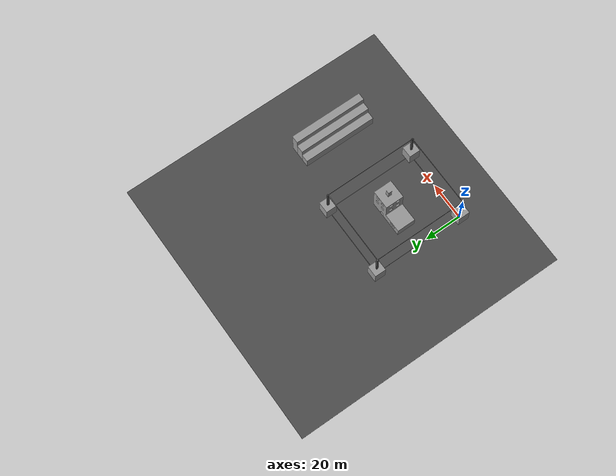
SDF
<?xml version="1.0" ?>
<sdf version="1.5">
  <world name="default">

    <gui fullscreen='0'>
      <camera name='user_camera'>
        <pose>-61.3 -26.2 72 0 0.53 0.62</pose>
      </camera>
    </gui>

    <scene>
      <grid>false</grid>
      <origin_visual>false</origin_visual>
    </scene>

    <!-- A global light source -->
    <include>
      <uri>model://sun</uri>
    </include>
    <!-- A ground plane -->
    <include>
      <uri>model://mbzirc_plane</uri>
      <name>mbzirc_plane</name>
	  <pose> 30.0 50.0 0.1 0 0 0 </pose>
    </include>

    <include>
      <uri>model://mbzirc_stand_6</uri>
      <name>mbzirc_stand_6_2</name>
	  <pose> 67.0 25.0 0.1 0 0 0</pose>
    </include>
    <include>
      <uri>model://mbzirc_stand_10</uri>
      <name>mbzirc_stand_10_2</name>
	  <pose> 71.0 25.0 0.1 0 0 0</pose>
    </include>
    <include>
      <uri>model://mbzirc_stand_14</uri>
      <name>mbzirc_stand_14_2</name>
	  <pose> 75.0 25.0 0.1 0 0 0</pose>
    </include>

    <include>
      <uri>model://mbzirc_roof_50</uri>
      <name>mbzirc_roof_1</name>
	  <pose> 0.0 25.0 20 1.57079 0 0</pose>
    </include>

    <include>
      <uri>model://mbzirc_roof_50</uri>
      <name>mbzirc_roof_2</name>
	  <pose> 40.0 25.0 20 1.57079 0 0</pose>
    </include>

    <include>
      <uri>model://mbzirc_roof_40</uri>
      <name>mbzirc_roof_3</name>
	  <pose> 20.0 50.0 20 0 1.57079 0 </pose>
    </include>

    <include>
      <uri>model://mbzirc_roof_40</uri>
      <name>mbzirc_roof_4</name>
	  <pose> 20.0 0.0 20 0 1.57079 0 </pose>
    </include>

    <include>
      <uri>model://mbzirc_roof_50</uri>
      <name>mbzirc_roof_5</name>
	  <pose> 0.0 25.0 0.1 1.57079 0 0</pose>
    </include>

    <include>
      <uri>model://mbzirc_roof_50</uri>
      <name>mbzirc_roof_6</name>
	  <pose> 40.0 25.0 0.1 1.57079 0 0</pose>
    </include>

    <include>
      <uri>model://mbzirc_roof_40</uri>
      <name>mbzirc_roof_7</name>
	  <pose> 20.0 50.0 0.1 0 1.57079 0 </pose>
    </include>

    <include>
      <uri>model://mbzirc_roof_40</uri>
      <name>mbzirc_roof_8</name>
	  <pose> 20.0 0.0 0.1 0 1.57079 0 </pose>
    </include>

    <include>
      <uri>model://mbzirc_basebox</uri>
      <name>mbzirc_basebox_1</name>
	  <pose> 0.0 0.0 4.0 0 0 0 </pose>
    </include>
    <include>
      <uri>model://mbzirc_basebox</uri>
      <name>mbzirc_basebox_2</name>
	  <pose> 40.0 0.0 4.0 0 0 0 </pose>
    </include>
    <include>
      <uri>model://mbzirc_basebox</uri>
      <name>mbzirc_basebox_3</name>
	  <pose> 40.0 50.0 4.0 0 0 0 </pose>
    </include>
    <include>
      <uri>model://mbzirc_basebox</uri>
      <name>mbzirc_basebox_4</name>
	  <pose> 0.0 50.0 4.0 0 0 0 </pose>
    </include>

    <include>
      <uri>model://mbzirc_column</uri>
      <name>mbzirc_column_1</name>
	  <pose> 0.0 0.0 10.0 0 0 0 </pose>
    </include>
    <include>
      <uri>model://mbzirc_column</uri>
      <name>mbzirc_column_2</name>
	  <pose> 40.0 50.0 10.0 0 0 0 </pose>
    </include>
    <include>
      <uri>model://mbzirc_column</uri>
      <name>mbzirc_column_3</name>
	  <pose> 40.0 0.0 10.0 0 0 0 </pose>
    </include>
    <include>
      <uri>model://mbzirc_column</uri>
      <name>mbzirc_column_4</name>
	  <pose> 0.0 50.0 10.0 0 0 0 </pose>
    </include>

    <include>
      <uri>model://mbzirc_building</uri>
      <name>mbzirc_building</name>
	  <pose> 10.0 20.0 0.15 0 0 0 </pose>
    </include>

    <physics name='default_physics' default='0' type='ode'>
      <gravity>0 0 -9.8066</gravity>
      <ode>
        <solver>
          <type>quick</type>
          <iters>10</iters>
          <sor>1.3</sor>
          <use_dynamic_moi_rescaling>0</use_dynamic_moi_rescaling>
        </solver>
        <constraints>
          <cfm>0</cfm>
          <erp>0.2</erp>
          <contact_max_correcting_vel>100</contact_max_correcting_vel>
          <contact_surface_layer>0.001</contact_surface_layer>
        </constraints>
      </ode>
      <max_step_size>0.004</max_step_size>
      <real_time_factor>1</real_time_factor>
      <real_time_update_rate>250</real_time_update_rate>
      <magnetic_field>6.0e-6 2.3e-5 -4.2e-5</magnetic_field>
    </physics>
  </world>
</sdf>

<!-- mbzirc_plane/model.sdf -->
<sdf version="1.5">
  <model name="mbzirc_plane">
    <static>true</static>
    <link name="link">
      <collision name="collision">
        <geometry>
          <box>
            <size>150 150 .1</size>
          </box>
        </geometry>
      </collision>
      <visual name="visual">
        <cast_shadows>false</cast_shadows>
        <geometry>
          <box>
            <size>150 150 .1</size>
          </box>
        </geometry>
        <material>
          <script>
            <uri>model://mbzirc_plane/materials/scripts</uri>
            <uri>model://mbzirc_plane/materials/textures</uri>
            <name>vrc/asphalt</name>
          </script>
        </material>
      </visual>
    </link>
  </model>
</sdf>

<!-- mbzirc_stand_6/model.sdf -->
<sdf version="1.5">
  <model name="mbzirc_stand_6">
    <static>true</static>
    <link name="link">
      <pose>0 0 3.0 0 0 0</pose>
      <collision name="collision">
        <geometry>
          <box>
            <size>4 40 6</size>
          </box>
        </geometry>
      </collision>
      <visual name="visual">
        <cast_shadows>false</cast_shadows>
        <geometry>
          <box>
            <size>4 40 6</size>
          </box>
        </geometry>
        <material>
          <script>
            <name>Gazebo/Grey</name>
            <uri>file://media/materials/scripts/gazebo.material</uri>
          </script>
        </material>
      </visual>
    </link>
  </model>
</sdf>

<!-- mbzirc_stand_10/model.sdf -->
<sdf version="1.5">
  <model name="mbzirc_stand_10">
    <static>true</static>
    <link name="link">
      <pose>0 0 5.0 0 0 0</pose>
      <collision name="collision">
        <geometry>
          <box>
            <size>4 40 10</size>
          </box>
        </geometry>
      </collision>
      <visual name="visual">
        <cast_shadows>false</cast_shadows>
        <geometry>
          <box>
            <size>4 40 10</size>
          </box>
        </geometry>
        <material>
          <script>
            <name>Gazebo/Grey</name>
            <uri>file://media/materials/scripts/gazebo.material</uri>
          </script>
        </material>
      </visual>
    </link>
  </model>
</sdf>

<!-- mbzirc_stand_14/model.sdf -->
<sdf version="1.5">
  <model name="mbzirc_stand_14">
    <static>true</static>
    <link name="link">
      <pose>0 0 7.0 0 0 0</pose>
      <collision name="collision">
        <geometry>
          <box>
            <size>4 40 14</size>
          </box>
        </geometry>
      </collision>
      <visual name="visual">
        <cast_shadows>false</cast_shadows>
        <geometry>
          <box>
            <size>4 40 14</size>
          </box>
        </geometry>
        <material>
          <script>
            <name>Gazebo/Grey</name>
            <uri>file://media/materials/scripts/gazebo.material</uri>
          </script>
        </material>
      </visual>
    </link>
  </model>
</sdf>

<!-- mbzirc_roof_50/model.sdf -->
<sdf version="1.5">
  <model name="mbzirc_roof_100">
    <static>true</static>
    <link name="link">
	<pose frame=''>0.0 0 0.25 0 0.0 0</pose>
      <collision name="collision">
        <geometry>
          <box>
            <size>0.2 0.2 50</size>
          </box>
        </geometry>
      </collision>
      <visual name="visual">
        <cast_shadows>false</cast_shadows>
        <geometry>
          <box>
            <size>0.2 0.2 50</size>
          </box>
        </geometry>
        <material>
          <script>
            <name>Gazebo/DarkGrey</name>
            <uri>file://media/materials/scripts/gazebo.material</uri>
          </script>
        </material>
      </visual>
    </link>
  </model>
</sdf>

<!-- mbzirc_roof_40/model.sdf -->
<sdf version="1.5">
  <model name="mbzirc_roof_40">
    <static>true</static>
    <link name="link">
	<pose frame=''>0.0 0 0.25 0 0.0 0</pose>
      <collision name="collision">
        <geometry>
          <box>
            <size>0.2 0.2 40</size>
          </box>
        </geometry>
      </collision>
      <visual name="visual">
        <cast_shadows>false</cast_shadows>
        <geometry>
          <box>
            <size>0.2 0.2 40</size>
          </box>
        </geometry>
        <material>
          <script>
            <name>Gazebo/DarkGrey</name>
            <uri>file://media/materials/scripts/gazebo.material</uri>
          </script>
        </material>
      </visual>
    </link>
  </model>
</sdf>

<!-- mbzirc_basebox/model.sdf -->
<sdf version="1.5">
  <model name="mbzirc_basebox">
    <static>true</static>
    <link name="link">
      <collision name="collision">
        <geometry>
          <box>
            <size>6 6 8</size>
          </box>
        </geometry>
      </collision>
      <visual name="visual">
        <cast_shadows>false</cast_shadows>
        <geometry>
          <box>
            <size>6 6 8</size>
          </box>
        </geometry>
        <material>
          <script>
            <name>Gazebo/Grey</name>
            <uri>file://media/materials/scripts/gazebo.material</uri>
          </script>
        </material>
      </visual>
    </link>
  </model>
</sdf>

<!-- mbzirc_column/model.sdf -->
<sdf version="1.5">
  <model name="mbzirc_column">
    <static>true</static>
    <link name="link">
      <collision name="collision">
        <geometry>
          <box>
            <size>1 1 20</size>
          </box>
        </geometry>
      </collision>
      <visual name="visual">
        <cast_shadows>false</cast_shadows>
        <geometry>
          <box>
            <size>1 1 20</size>
          </box>
        </geometry>
        <material>
          <script>
            <name>Gazebo/DarkGrey</name>
            <uri>file://media/materials/scripts/gazebo.material</uri>
          </script>
        </material>
      </visual>
    </link>
  </model>
</sdf>

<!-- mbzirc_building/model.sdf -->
<sdf version="1.5">
  <model name="mbzirc_building">
    <static>true</static>
	<link name='chassis1'>
		<collision name='collision1'>
			<geometry>
				<mesh>
				<scale>0.1 0.1 0.1</scale>
				<uri>model://mbzirc_building/CH3_building.stl</uri></mesh>
			</geometry>
		</collision>

		<visual name='visual1'>
			<geometry>
				<mesh>
				<scale>0.1 0.1 0.1</scale>
				<uri>model://mbzirc_building/CH3_building.stl</uri></mesh>
			</geometry>
		    <material>
		      <script>
		        <name>Gazebo/Grey</name>
		        <uri>file://media/materials/scripts/gazebo.material</uri>
		      </script>
		    </material>
		</visual>
	</link>
  </model>
</sdf>
